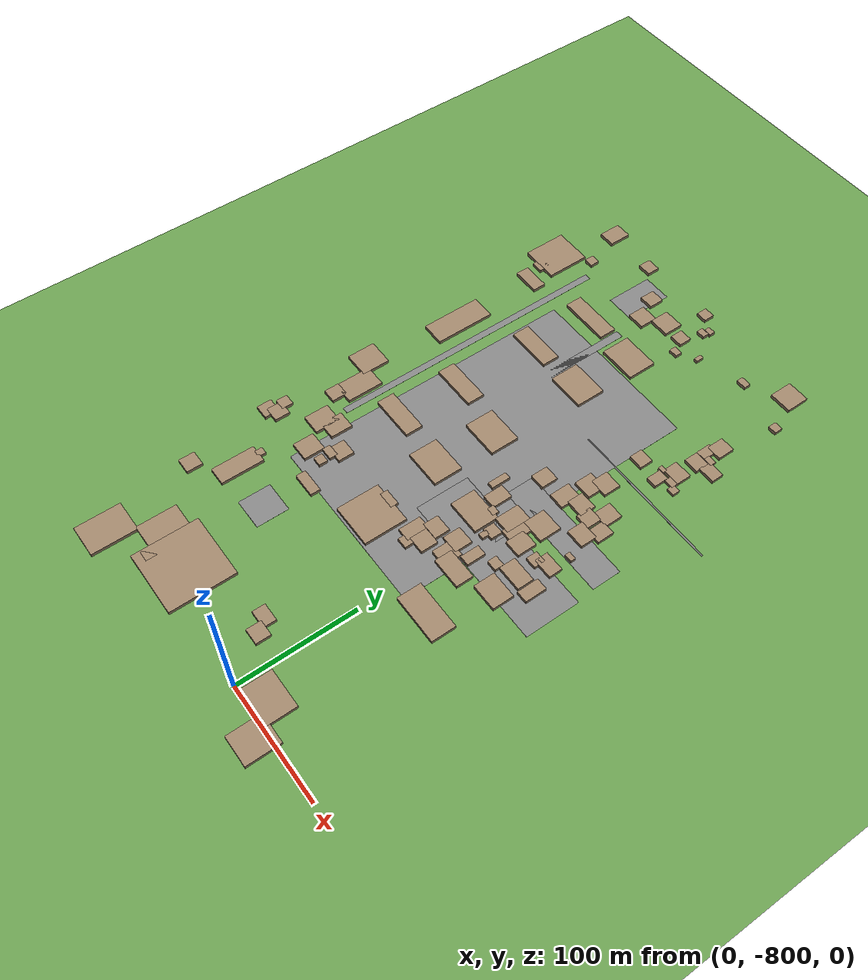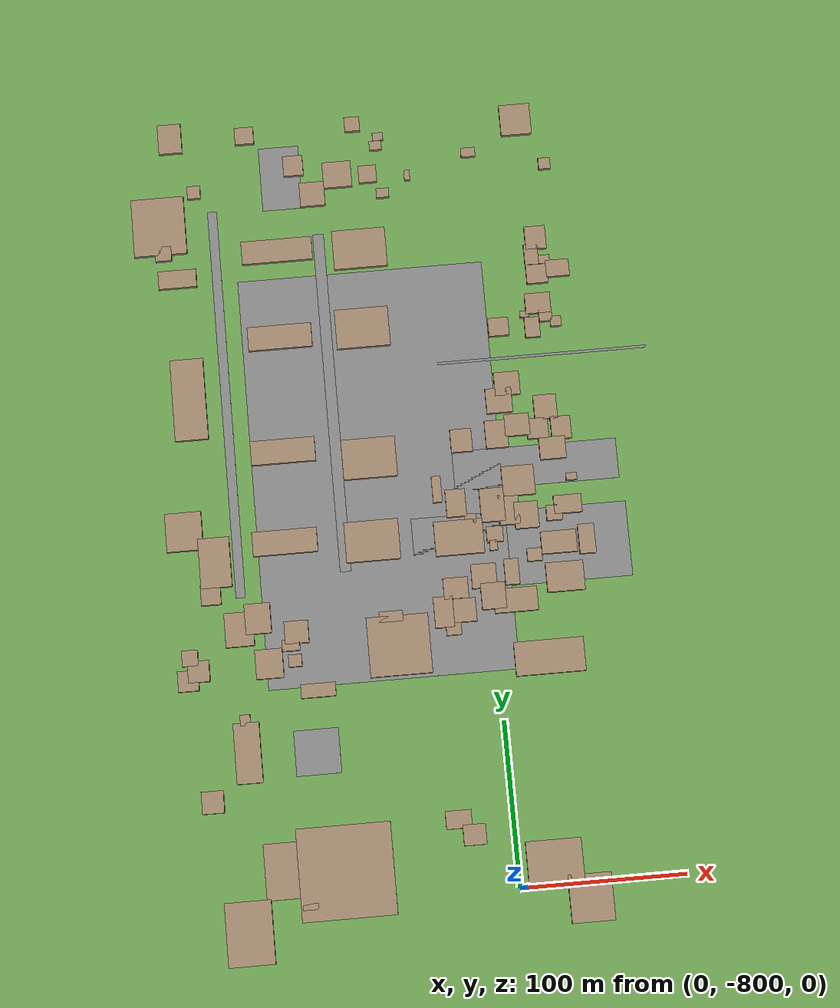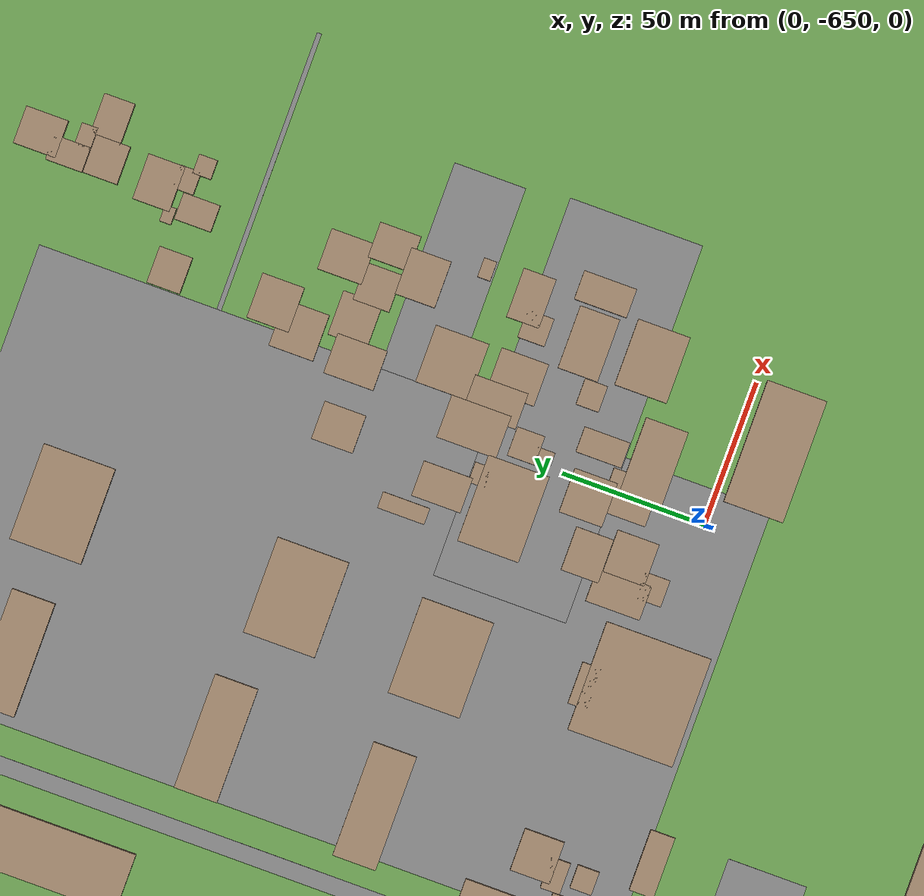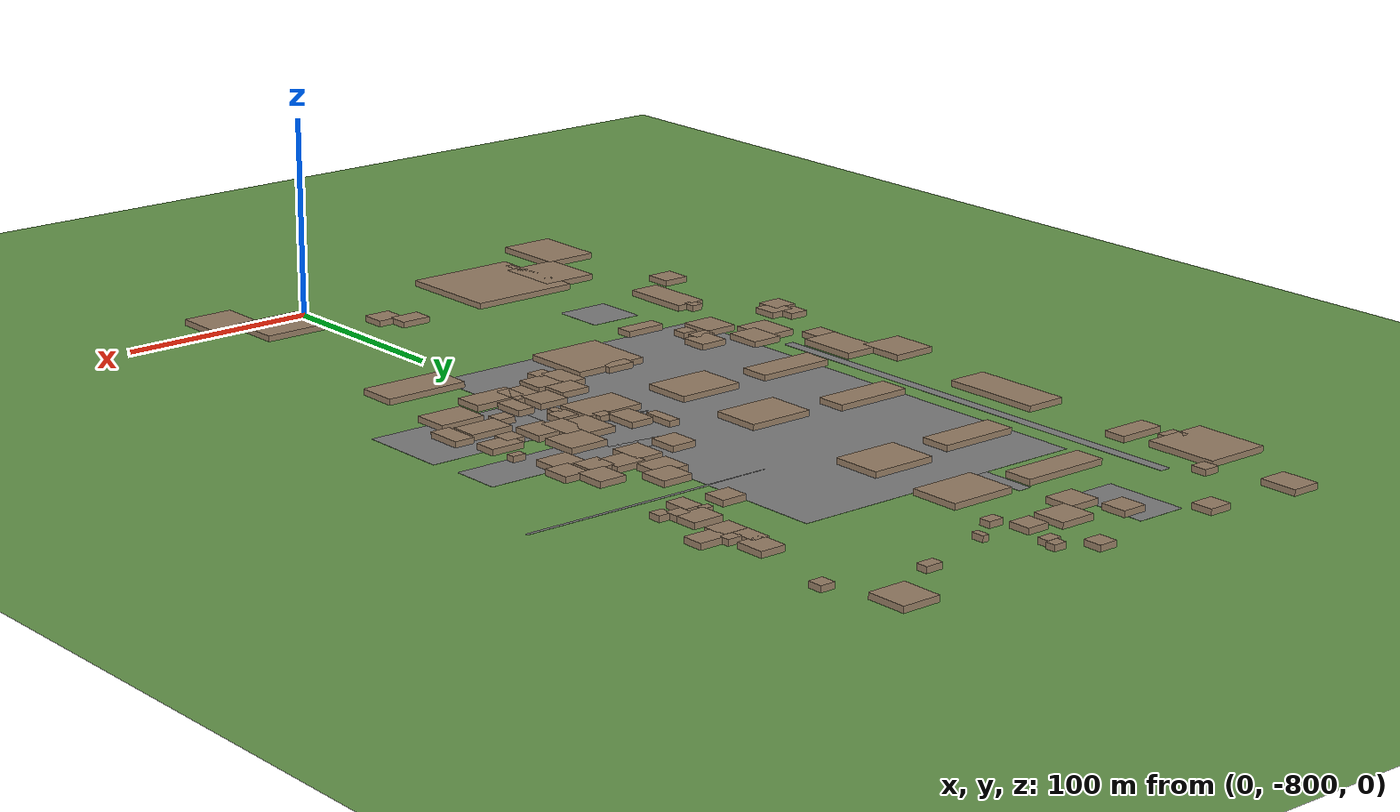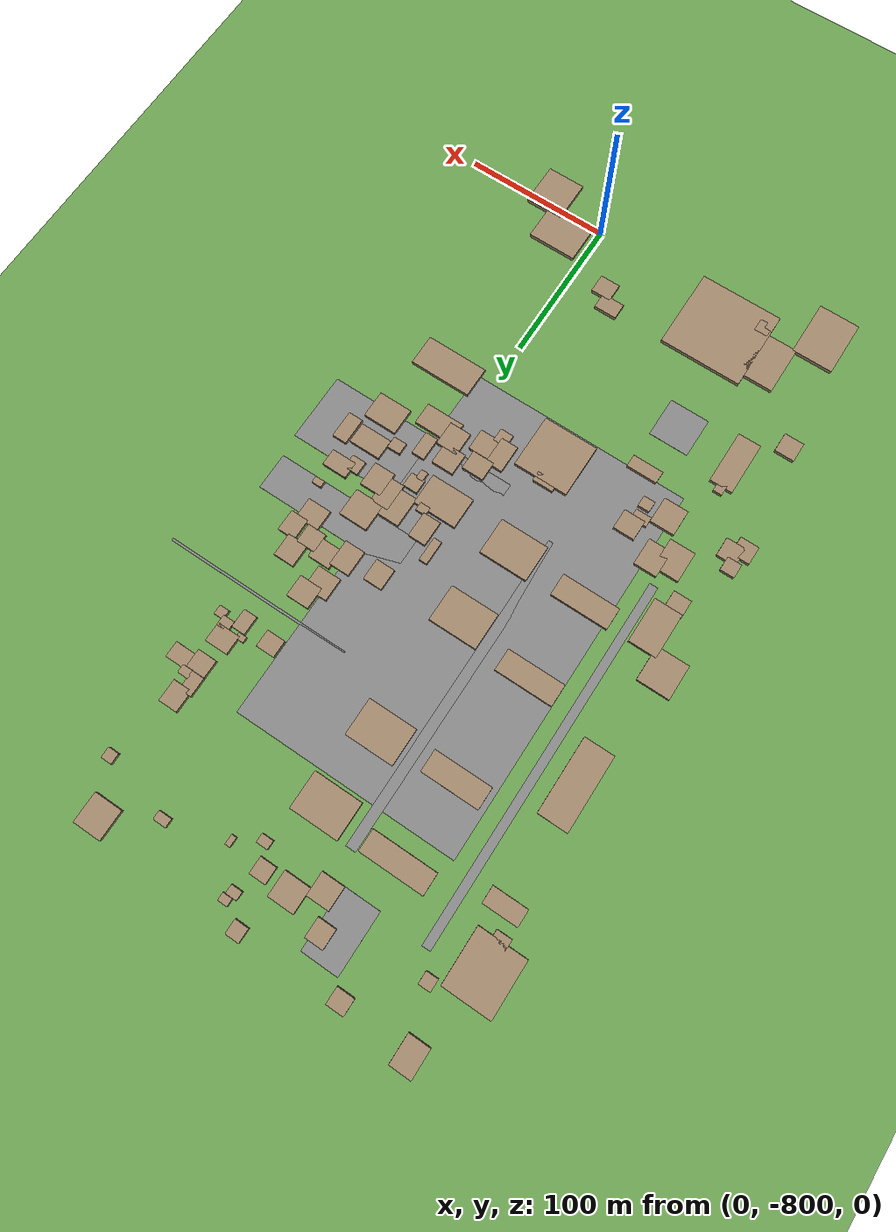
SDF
<sdf version="1.9">
 <world name="kimje_farmland">
  <model name="ground_plane">
   <static>true</static>
   <link name="link">
    <collision name="collision">
     <geometry><plane><normal>0 0 1</normal><size>2000 2000</size></plane></geometry>
    </collision>
    <visual name="visual">
     <geometry><plane><normal>0 0 1</normal><size>2000 2000</size></plane></geometry>
     <material><ambient>0.4 0.6 0.3 1</ambient><diffuse>0.4 0.6 0.3 1</diffuse></material>
    </visual>
   </link>
  </model>
  <model name="osm_49">
   <static>true</static>
   <pose>20.24 -594.63 0.040 0 0 0</pose>
   <link name="link">
    <collision name="collision"><geometry><box><size>132.35 46.45 0.080</size></box></geometry></collision>
    <visual name="visual">
     <geometry><box><size>132.35 46.45 0.080</size></box></geometry>
     <material><ambient>0.5 0.5 0.5 1</ambient><diffuse>0.5 0.5 0.5 1</diffuse></material>
    </visual>
   </link>
  </model>
  <model name="osm_106">
   <static>true</static>
   <pose>-153.56 -488.07 0.040 0 0 0</pose>
   <link name="link">
    <collision name="collision"><geometry><box><size>5.78 245.81 0.080</size></box></geometry></collision>
    <visual name="visual">
     <geometry><box><size>5.78 245.81 0.080</size></box></geometry>
     <material><ambient>0.5 0.5 0.5 1</ambient><diffuse>0.5 0.5 0.5 1</diffuse></material>
    </visual>
   </link>
  </model>
  <model name="osm_107">
   <static>true</static>
   <pose>-64.33 -540.54 0.040 0 0 0</pose>
   <link name="link">
    <collision name="collision"><geometry><box><size>152.93 256.90 0.080</size></box></geometry></collision>
    <visual name="visual">
     <geometry><box><size>152.93 256.90 0.080</size></box></geometry>
     <material><ambient>0.5 0.5 0.5 1</ambient><diffuse>0.5 0.5 0.5 1</diffuse></material>
    </visual>
   </link>
  </model>
  <model name="osm_121">
   <static>true</static>
   <pose>-108.99 -346.88 0.040 0 0 0</pose>
   <link name="link">
    <collision name="collision"><geometry><box><size>25.13 40.97 0.080</size></box></geometry></collision>
    <visual name="visual">
     <geometry><box><size>25.13 40.97 0.080</size></box></geometry>
     <material><ambient>0.5 0.5 0.5 1</ambient><diffuse>0.5 0.5 0.5 1</diffuse></material>
    </visual>
   </link>
  </model>
  <model name="osm_169">
   <static>true</static>
   <pose>-114.23 -708.53 0.040 0 0 0</pose>
   <link name="link">
    <collision name="collision"><geometry><box><size>27.28 27.43 0.080</size></box></geometry></collision>
    <visual name="visual">
     <geometry><box><size>27.28 27.43 0.080</size></box></geometry>
     <material><ambient>0.5 0.5 0.5 1</ambient><diffuse>0.5 0.5 0.5 1</diffuse></material>
    </visual>
   </link>
  </model>
  <model name="osm_170">
   <static>true</static>
   <pose>44.25 -475.12 0.040 0 0 0</pose>
   <link name="link">
    <collision name="collision"><geometry><box><size>129.79 1.60 0.080</size></box></geometry></collision>
    <visual name="visual">
     <geometry><box><size>129.79 1.60 0.080</size></box></geometry>
     <material><ambient>0.5 0.5 0.5 1</ambient><diffuse>0.5 0.5 0.5 1</diffuse></material>
    </visual>
   </link>
  </model>
  <model name="osm_174">
   <static>true</static>
   <pose>-155.92 -705.83 1.500 0 0 0</pose>
   <link name="link">
    <collision name="collision"><geometry><box><size>15.80 36.69 3.000</size></box></geometry></collision>
    <visual name="visual">
     <geometry><box><size>15.80 36.69 3.000</size></box></geometry>
     <material><ambient>0.6 0.5 0.4 1</ambient><diffuse>0.6 0.5 0.4 1</diffuse></material>
    </visual>
   </link>
  </model>
  <model name="osm_175">
   <static>true</static>
   <pose>-182.11 -654.13 1.500 0 0 0</pose>
   <link name="link">
    <collision name="collision"><geometry><box><size>13.18 13.00 3.000</size></box></geometry></collision>
    <visual name="visual">
     <geometry><box><size>13.18 13.00 3.000</size></box></geometry>
     <material><ambient>0.6 0.5 0.4 1</ambient><diffuse>0.6 0.5 0.4 1</diffuse></material>
    </visual>
   </link>
  </model>
  <model name="osm_176">
   <static>true</static>
   <pose>-188.78 -659.40 1.500 0 0 0</pose>
   <link name="link">
    <collision name="collision"><geometry><box><size>12.63 12.60 3.000</size></box></geometry></collision>
    <visual name="visual">
     <geometry><box><size>12.63 12.60 3.000</size></box></geometry>
     <material><ambient>0.6 0.5 0.4 1</ambient><diffuse>0.6 0.5 0.4 1</diffuse></material>
    </visual>
   </link>
  </model>
  <model name="osm_177">
   <static>true</static>
   <pose>-186.82 -645.58 1.500 0 0 0</pose>
   <link name="link">
    <collision name="collision"><geometry><box><size>9.77 9.73 3.000</size></box></geometry></collision>
    <visual name="visual">
     <geometry><box><size>9.77 9.73 3.000</size></box></geometry>
     <material><ambient>0.6 0.5 0.4 1</ambient><diffuse>0.6 0.5 0.4 1</diffuse></material>
    </visual>
   </link>
  </model>
  <model name="osm_191">
   <static>true</static>
   <pose>-179.10 -733.44 1.500 0 0 0</pose>
   <link name="link">
    <collision name="collision"><geometry><box><size>13.40 13.48 3.000</size></box></geometry></collision>
    <visual name="visual">
     <geometry><box><size>13.40 13.48 3.000</size></box></geometry>
     <material><ambient>0.6 0.5 0.4 1</ambient><diffuse>0.6 0.5 0.4 1</diffuse></material>
    </visual>
   </link>
  </model>
  <model name="osm_197">
   <static>true</static>
   <pose>-156.17 -685.99 1.500 0 0 0</pose>
   <link name="link">
    <collision name="collision"><geometry><box><size>6.15 6.66 3.000</size></box></geometry></collision>
    <visual name="visual">
     <geometry><box><size>6.15 6.66 3.000</size></box></geometry>
     <material><ambient>0.6 0.5 0.4 1</ambient><diffuse>0.6 0.5 0.4 1</diffuse></material>
    </visual>
   </link>
  </model>
  <model name="osm_759">
   <static>true</static>
   <pose>-176.65 -315.94 1.500 0 0 0</pose>
   <link name="link">
    <collision name="collision"><geometry><box><size>14.64 19.01 3.000</size></box></geometry></collision>
    <visual name="visual">
     <geometry><box><size>14.64 19.01 3.000</size></box></geometry>
     <material><ambient>0.6 0.5 0.4 1</ambient><diffuse>0.6 0.5 0.4 1</diffuse></material>
    </visual>
   </link>
  </model>
  <model name="osm_774">
   <static>true</static>
   <pose>-129.71 -317.85 1.500 0 0 0</pose>
   <link name="link">
    <collision name="collision"><geometry><box><size>11.85 10.90 3.000</size></box></geometry></collision>
    <visual name="visual">
     <geometry><box><size>11.85 10.90 3.000</size></box></geometry>
     <material><ambient>0.6 0.5 0.4 1</ambient><diffuse>0.6 0.5 0.4 1</diffuse></material>
    </visual>
   </link>
  </model>
  <model name="osm_779">
   <static>true</static>
   <pose>-61.20 -316.01 1.500 0 0 0</pose>
   <link name="link">
    <collision name="collision"><geometry><box><size>9.48 9.37 3.000</size></box></geometry></collision>
    <visual name="visual">
     <geometry><box><size>9.48 9.37 3.000</size></box></geometry>
     <material><ambient>0.6 0.5 0.4 1</ambient><diffuse>0.6 0.5 0.4 1</diffuse></material>
    </visual>
   </link>
  </model>
  <model name="osm_783">
   <static>true</static>
   <pose>-45.70 -325.67 1.500 0 0 0</pose>
   <link name="link">
    <collision name="collision"><geometry><box><size>6.55 5.07 3.000</size></box></geometry></collision>
    <visual name="visual">
     <geometry><box><size>6.55 5.07 3.000</size></box></geometry>
     <material><ambient>0.6 0.5 0.4 1</ambient><diffuse>0.6 0.5 0.4 1</diffuse></material>
    </visual>
   </link>
  </model>
  <model name="osm_784">
   <static>true</static>
   <pose>-47.65 -331.33 1.500 0 0 0</pose>
   <link name="link">
    <collision name="collision"><geometry><box><size>7.57 5.76 3.000</size></box></geometry></collision>
    <visual name="visual">
     <geometry><box><size>7.57 5.76 3.000</size></box></geometry>
     <material><ambient>0.6 0.5 0.4 1</ambient><diffuse>0.6 0.5 0.4 1</diffuse></material>
    </visual>
   </link>
  </model>
  <model name="osm_805">
   <static>true</static>
   <pose>41.92 -321.94 1.500 0 0 0</pose>
   <link name="link">
    <collision name="collision"><geometry><box><size>19.26 19.97 3.000</size></box></geometry></collision>
    <visual name="visual">
     <geometry><box><size>19.26 19.97 3.000</size></box></geometry>
     <material><ambient>0.6 0.5 0.4 1</ambient><diffuse>0.6 0.5 0.4 1</diffuse></material>
    </visual>
   </link>
  </model>
  <model name="osm_807">
   <static>true</static>
   <pose>57.48 -352.31 1.500 0 0 0</pose>
   <link name="link">
    <collision name="collision"><geometry><box><size>7.35 7.18 3.000</size></box></geometry></collision>
    <visual name="visual">
     <geometry><box><size>7.35 7.18 3.000</size></box></geometry>
     <material><ambient>0.6 0.5 0.4 1</ambient><diffuse>0.6 0.5 0.4 1</diffuse></material>
    </visual>
   </link>
  </model>
  <model name="osm_808">
   <static>true</static>
   <pose>10.24 -340.84 1.500 0 0 0</pose>
   <link name="link">
    <collision name="collision"><geometry><box><size>8.88 5.88 3.000</size></box></geometry></collision>
    <visual name="visual">
     <geometry><box><size>8.88 5.88 3.000</size></box></geometry>
     <material><ambient>0.6 0.5 0.4 1</ambient><diffuse>0.6 0.5 0.4 1</diffuse></material>
    </visual>
   </link>
  </model>
  <model name="osm_809">
   <static>true</static>
   <pose>-29.42 -352.53 1.500 0 0 0</pose>
   <link name="link">
    <collision name="collision"><geometry><box><size>3.46 6.45 3.000</size></box></geometry></collision>
    <visual name="visual">
     <geometry><box><size>3.46 6.45 3.000</size></box></geometry>
     <material><ambient>0.6 0.5 0.4 1</ambient><diffuse>0.6 0.5 0.4 1</diffuse></material>
    </visual>
   </link>
  </model>
  <model name="osm_810">
   <static>true</static>
   <pose>-45.71 -362.72 1.500 0 0 0</pose>
   <link name="link">
    <collision name="collision"><geometry><box><size>7.85 5.93 3.000</size></box></geometry></collision>
    <visual name="visual">
     <geometry><box><size>7.85 5.93 3.000</size></box></geometry>
     <material><ambient>0.6 0.5 0.4 1</ambient><diffuse>0.6 0.5 0.4 1</diffuse></material>
    </visual>
   </link>
  </model>
  <model name="osm_811">
   <static>true</static>
   <pose>-54.15 -349.53 1.500 0 0 0</pose>
   <link name="link">
    <collision name="collision"><geometry><box><size>11.23 11.03 3.000</size></box></geometry></collision>
    <visual name="visual">
     <geometry><box><size>11.23 11.03 3.000</size></box></geometry>
     <material><ambient>0.6 0.5 0.4 1</ambient><diffuse>0.6 0.5 0.4 1</diffuse></material>
    </visual>
   </link>
  </model>
  <model name="osm_812">
   <static>true</static>
   <pose>-73.25 -348.25 1.500 0 0 0</pose>
   <link name="link">
    <collision name="collision"><geometry><box><size>17.90 16.72 3.000</size></box></geometry></collision>
    <visual name="visual">
     <geometry><box><size>17.90 16.72 3.000</size></box></geometry>
     <material><ambient>0.6 0.5 0.4 1</ambient><diffuse>0.6 0.5 0.4 1</diffuse></material>
    </visual>
   </link>
  </model>
  <model name="osm_813">
   <static>true</static>
   <pose>-100.47 -340.19 1.500 0 0 0</pose>
   <link name="link">
    <collision name="collision"><geometry><box><size>12.41 13.00 3.000</size></box></geometry></collision>
    <visual name="visual">
     <geometry><box><size>12.41 13.00 3.000</size></box></geometry>
     <material><ambient>0.6 0.5 0.4 1</ambient><diffuse>0.6 0.5 0.4 1</diffuse></material>
    </visual>
   </link>
  </model>
  <model name="osm_814">
   <static>true</static>
   <pose>-89.86 -359.68 1.500 0 0 0</pose>
   <link name="link">
    <collision name="collision"><geometry><box><size>15.51 15.48 3.000</size></box></geometry></collision>
    <visual name="visual">
     <geometry><box><size>15.51 15.48 3.000</size></box></geometry>
     <material><ambient>0.6 0.5 0.4 1</ambient><diffuse>0.6 0.5 0.4 1</diffuse></material>
    </visual>
   </link>
  </model>
  <model name="osm_815">
   <static>true</static>
   <pose>-163.98 -352.23 1.500 0 0 0</pose>
   <link name="link">
    <collision name="collision"><geometry><box><size>8.12 8.10 3.000</size></box></geometry></collision>
    <visual name="visual">
     <geometry><box><size>8.12 8.10 3.000</size></box></geometry>
     <material><ambient>0.6 0.5 0.4 1</ambient><diffuse>0.6 0.5 0.4 1</diffuse></material>
    </visual>
   </link>
  </model>
  <model name="osm_816">
   <static>true</static>
   <pose>-187.26 -372.69 1.500 0 0 0</pose>
   <link name="link">
    <collision name="collision"><geometry><box><size>32.94 37.06 3.000</size></box></geometry></collision>
    <visual name="visual">
     <geometry><box><size>32.94 37.06 3.000</size></box></geometry>
     <material><ambient>0.6 0.5 0.4 1</ambient><diffuse>0.6 0.5 0.4 1</diffuse></material>
    </visual>
   </link>
  </model>
  <model name="osm_837">
   <static>true</static>
   <pose>-178.03 -407.62 1.500 0 0 0</pose>
   <link name="link">
    <collision name="collision"><geometry><box><size>23.67 11.35 3.000</size></box></geometry></collision>
    <visual name="visual">
     <geometry><box><size>23.67 11.35 3.000</size></box></geometry>
     <material><ambient>0.6 0.5 0.4 1</ambient><diffuse>0.6 0.5 0.4 1</diffuse></material>
    </visual>
   </link>
  </model>
  <model name="osm_838">
   <static>true</static>
   <pose>-185.66 -390.52 1.500 0 0 0</pose>
   <link name="link">
    <collision name="collision"><geometry><box><size>10.07 9.31 3.000</size></box></geometry></collision>
    <visual name="visual">
     <geometry><box><size>10.07 9.31 3.000</size></box></geometry>
     <material><ambient>0.6 0.5 0.4 1</ambient><diffuse>0.6 0.5 0.4 1</diffuse></material>
    </visual>
   </link>
  </model>
  <model name="osm_839">
   <static>true</static>
   <pose>-114.83 -394.46 1.500 0 0 0</pose>
   <link name="link">
    <collision name="collision"><geometry><box><size>44.14 14.65 3.000</size></box></geometry></collision>
    <visual name="visual">
     <geometry><box><size>44.14 14.65 3.000</size></box></geometry>
     <material><ambient>0.6 0.5 0.4 1</ambient><diffuse>0.6 0.5 0.4 1</diffuse></material>
    </visual>
   </link>
  </model>
  <model name="osm_840">
   <static>true</static>
   <pose>-117.19 -450.11 1.500 0 0 0</pose>
   <link name="link">
    <collision name="collision"><geometry><box><size>39.71 15.05 3.000</size></box></geometry></collision>
    <visual name="visual">
     <geometry><box><size>39.71 15.05 3.000</size></box></geometry>
     <material><ambient>0.6 0.5 0.4 1</ambient><diffuse>0.6 0.5 0.4 1</diffuse></material>
    </visual>
   </link>
  </model>
  <model name="osm_841">
   <static>true</static>
   <pose>-63.10 -397.55 1.500 0 0 0</pose>
   <link name="link">
    <collision name="collision"><geometry><box><size>33.27 24.99 3.000</size></box></geometry></collision>
    <visual name="visual">
     <geometry><box><size>33.27 24.99 3.000</size></box></geometry>
     <material><ambient>0.6 0.5 0.4 1</ambient><diffuse>0.6 0.5 0.4 1</diffuse></material>
    </visual>
   </link>
  </model>
  <model name="osm_842">
   <static>true</static>
   <pose>-65.53 -448.65 1.500 0 0 0</pose>
   <link name="link">
    <collision name="collision"><geometry><box><size>33.27 24.99 3.000</size></box></geometry></collision>
    <visual name="visual">
     <geometry><box><size>33.27 24.99 3.000</size></box></geometry>
     <material><ambient>0.6 0.5 0.4 1</ambient><diffuse>0.6 0.5 0.4 1</diffuse></material>
    </visual>
   </link>
  </model>
  <model name="osm_843">
   <static>true</static>
   <pose>47.19 -400.11 1.500 0 0 0</pose>
   <link name="link">
    <collision name="collision"><geometry><box><size>12.92 14.67 3.000</size></box></geometry></collision>
    <visual name="visual">
     <geometry><box><size>12.92 14.67 3.000</size></box></geometry>
     <material><ambient>0.6 0.5 0.4 1</ambient><diffuse>0.6 0.5 0.4 1</diffuse></material>
    </visual>
   </link>
  </model>
  <model name="osm_844">
   <static>true</static>
   <pose>43.53 -410.97 1.500 0 0 0</pose>
   <link name="link">
    <collision name="collision"><geometry><box><size>8.60 12.79 3.000</size></box></geometry></collision>
    <visual name="visual">
     <geometry><box><size>8.60 12.79 3.000</size></box></geometry>
     <material><ambient>0.6 0.5 0.4 1</ambient><diffuse>0.6 0.5 0.4 1</diffuse></material>
    </visual>
   </link>
  </model>
  <model name="osm_845">
   <static>true</static>
   <pose>45.96 -423.59 1.500 0 0 0</pose>
   <link name="link">
    <collision name="collision"><geometry><box><size>13.18 11.99 3.000</size></box></geometry></collision>
    <visual name="visual">
     <geometry><box><size>13.18 11.99 3.000</size></box></geometry>
     <material><ambient>0.6 0.5 0.4 1</ambient><diffuse>0.6 0.5 0.4 1</diffuse></material>
    </visual>
   </link>
  </model>
  <model name="osm_846">
   <static>true</static>
   <pose>50.94 -414.66 1.500 0 0 0</pose>
   <link name="link">
    <collision name="collision"><geometry><box><size>7.53 5.53 3.000</size></box></geometry></collision>
    <visual name="visual">
     <geometry><box><size>7.53 5.53 3.000</size></box></geometry>
     <material><ambient>0.6 0.5 0.4 1</ambient><diffuse>0.6 0.5 0.4 1</diffuse></material>
    </visual>
   </link>
  </model>
  <model name="osm_847">
   <static>true</static>
   <pose>59.06 -420.87 1.500 0 0 0</pose>
   <link name="link">
    <collision name="collision"><geometry><box><size>14.53 10.65 3.000</size></box></geometry></collision>
    <visual name="visual">
     <geometry><box><size>14.53 10.65 3.000</size></box></geometry>
     <material><ambient>0.6 0.5 0.4 1</ambient><diffuse>0.6 0.5 0.4 1</diffuse></material>
    </visual>
   </link>
  </model>
  <model name="osm_864">
   <static>true</static>
   <pose>44.71 -442.40 1.500 0 0 0</pose>
   <link name="link">
    <collision name="collision"><geometry><box><size>15.73 12.88 3.000</size></box></geometry></collision>
    <visual name="visual">
     <geometry><box><size>15.73 12.88 3.000</size></box></geometry>
     <material><ambient>0.6 0.5 0.4 1</ambient><diffuse>0.6 0.5 0.4 1</diffuse></material>
    </visual>
   </link>
  </model>
  <model name="osm_865">
   <static>true</static>
   <pose>54.80 -454.89 1.500 0 0 0</pose>
   <link name="link">
    <collision name="collision"><geometry><box><size>6.66 6.40 3.000</size></box></geometry></collision>
    <visual name="visual">
     <geometry><box><size>6.66 6.40 3.000</size></box></geometry>
     <material><ambient>0.6 0.5 0.4 1</ambient><diffuse>0.6 0.5 0.4 1</diffuse></material>
    </visual>
   </link>
  </model>
  <model name="osm_866">
   <static>true</static>
   <pose>39.83 -457.55 1.500 0 0 0</pose>
   <link name="link">
    <collision name="collision"><geometry><box><size>9.25 12.80 3.000</size></box></geometry></collision>
    <visual name="visual">
     <geometry><box><size>9.25 12.80 3.000</size></box></geometry>
     <material><ambient>0.6 0.5 0.4 1</ambient><diffuse>0.6 0.5 0.4 1</diffuse></material>
    </visual>
   </link>
  </model>
  <model name="osm_867">
   <static>true</static>
   <pose>35.80 -448.79 1.500 0 0 0</pose>
   <link name="link">
    <collision name="collision"><geometry><box><size>5.69 3.97 3.000</size></box></geometry></collision>
    <visual name="visual">
     <geometry><box><size>5.69 3.97 3.000</size></box></geometry>
     <material><ambient>0.6 0.5 0.4 1</ambient><diffuse>0.6 0.5 0.4 1</diffuse></material>
    </visual>
   </link>
  </model>
  <model name="osm_868">
   <static>true</static>
   <pose>48.69 -450.76 1.500 0 0 0</pose>
   <link name="link">
    <collision name="collision"><geometry><box><size>8.01 7.21 3.000</size></box></geometry></collision>
    <visual name="visual">
     <geometry><box><size>8.01 7.21 3.000</size></box></geometry>
     <material><ambient>0.6 0.5 0.4 1</ambient><diffuse>0.6 0.5 0.4 1</diffuse></material>
    </visual>
   </link>
  </model>
  <model name="osm_869">
   <static>true</static>
   <pose>18.86 -455.53 1.500 0 0 0</pose>
   <link name="link">
    <collision name="collision"><geometry><box><size>12.69 11.52 3.000</size></box></geometry></collision>
    <visual name="visual">
     <geometry><box><size>12.69 11.52 3.000</size></box></geometry>
     <material><ambient>0.6 0.5 0.4 1</ambient><diffuse>0.6 0.5 0.4 1</diffuse></material>
    </visual>
   </link>
  </model>
  <model name="osm_876">
   <static>true</static>
   <pose>-176.14 -485.18 1.500 0 0 0</pose>
   <link name="link">
    <collision name="collision"><geometry><box><size>20.59 51.34 3.000</size></box></geometry></collision>
    <visual name="visual">
     <geometry><box><size>20.59 51.34 3.000</size></box></geometry>
     <material><ambient>0.6 0.5 0.4 1</ambient><diffuse>0.6 0.5 0.4 1</diffuse></material>
    </visual>
   </link>
  </model>
  <model name="osm_877">
   <static>true</static>
   <pose>-120.82 -522.52 1.500 0 0 0</pose>
   <link name="link">
    <collision name="collision"><geometry><box><size>39.71 15.05 3.000</size></box></geometry></collision>
    <visual name="visual">
     <geometry><box><size>39.71 15.05 3.000</size></box></geometry>
     <material><ambient>0.6 0.5 0.4 1</ambient><diffuse>0.6 0.5 0.4 1</diffuse></material>
    </visual>
   </link>
  </model>
  <model name="osm_878">
   <static>true</static>
   <pose>-68.19 -531.47 1.500 0 0 0</pose>
   <link name="link">
    <collision name="collision"><geometry><box><size>33.27 24.99 3.000</size></box></geometry></collision>
    <visual name="visual">
     <geometry><box><size>33.27 24.99 3.000</size></box></geometry>
     <material><ambient>0.6 0.5 0.4 1</ambient><diffuse>0.6 0.5 0.4 1</diffuse></material>
    </visual>
   </link>
  </model>
  <model name="osm_879">
   <static>true</static>
   <pose>20.72 -491.95 1.500 0 0 0</pose>
   <link name="link">
    <collision name="collision"><geometry><box><size>15.57 14.66 3.000</size></box></geometry></collision>
    <visual name="visual">
     <geometry><box><size>15.57 14.66 3.000</size></box></geometry>
     <material><ambient>0.6 0.5 0.4 1</ambient><diffuse>0.6 0.5 0.4 1</diffuse></material>
    </visual>
   </link>
  </model>
  <model name="osm_880">
   <static>true</static>
   <pose>14.80 -502.33 1.500 0 0 0</pose>
   <link name="link">
    <collision name="collision"><geometry><box><size>16.09 15.50 3.000</size></box></geometry></collision>
    <visual name="visual">
     <geometry><box><size>16.09 15.50 3.000</size></box></geometry>
     <material><ambient>0.6 0.5 0.4 1</ambient><diffuse>0.6 0.5 0.4 1</diffuse></material>
    </visual>
   </link>
  </model>
  <model name="osm_881">
   <static>true</static>
   <pose>11.33 -523.34 1.500 0 0 0</pose>
   <link name="link">
    <collision name="collision"><geometry><box><size>13.83 17.39 3.000</size></box></geometry></collision>
    <visual name="visual">
     <geometry><box><size>13.83 17.39 3.000</size></box></geometry>
     <material><ambient>0.6 0.5 0.4 1</ambient><diffuse>0.6 0.5 0.4 1</diffuse></material>
    </visual>
   </link>
  </model>
  <model name="osm_882">
   <static>true</static>
   <pose>-10.75 -525.48 1.500 0 0 0</pose>
   <link name="link">
    <collision name="collision"><geometry><box><size>13.15 14.43 3.000</size></box></geometry></collision>
    <visual name="visual">
     <geometry><box><size>13.15 14.43 3.000</size></box></geometry>
     <material><ambient>0.6 0.5 0.4 1</ambient><diffuse>0.6 0.5 0.4 1</diffuse></material>
    </visual>
   </link>
  </model>
  <model name="osm_889">
   <static>true</static>
   <pose>44.98 -534.85 1.500 0 0 0</pose>
   <link name="link">
    <collision name="collision"><geometry><box><size>16.16 13.90 3.000</size></box></geometry></collision>
    <visual name="visual">
     <geometry><box><size>16.16 13.90 3.000</size></box></geometry>
     <material><ambient>0.6 0.5 0.4 1</ambient><diffuse>0.6 0.5 0.4 1</diffuse></material>
    </visual>
   </link>
  </model>
  <model name="osm_890">
   <static>true</static>
   <pose>51.35 -522.52 1.500 0 0 0</pose>
   <link name="link">
    <collision name="collision"><geometry><box><size>12.24 14.28 3.000</size></box></geometry></collision>
    <visual name="visual">
     <geometry><box><size>12.24 14.28 3.000</size></box></geometry>
     <material><ambient>0.6 0.5 0.4 1</ambient><diffuse>0.6 0.5 0.4 1</diffuse></material>
    </visual>
   </link>
  </model>
  <model name="osm_891">
   <static>true</static>
   <pose>42.96 -508.77 1.500 0 0 0</pose>
   <link name="link">
    <collision name="collision"><geometry><box><size>14.10 15.41 3.000</size></box></geometry></collision>
    <visual name="visual">
     <geometry><box><size>14.10 15.41 3.000</size></box></geometry>
     <material><ambient>0.6 0.5 0.4 1</ambient><diffuse>0.6 0.5 0.4 1</diffuse></material>
    </visual>
   </link>
  </model>
  <model name="osm_892">
   <static>true</static>
   <pose>36.95 -521.82 1.500 0 0 0</pose>
   <link name="link">
    <collision name="collision"><geometry><box><size>13.02 12.66 3.000</size></box></geometry></collision>
    <visual name="visual">
     <geometry><box><size>13.02 12.66 3.000</size></box></geometry>
     <material><ambient>0.6 0.5 0.4 1</ambient><diffuse>0.6 0.5 0.4 1</diffuse></material>
    </visual>
   </link>
  </model>
  <model name="osm_893">
   <static>true</static>
   <pose>24.48 -518.50 1.500 0 0 0</pose>
   <link name="link">
    <collision name="collision"><geometry><box><size>15.30 13.74 3.000</size></box></geometry></collision>
    <visual name="visual">
     <geometry><box><size>15.30 13.74 3.000</size></box></geometry>
     <material><ambient>0.6 0.5 0.4 1</ambient><diffuse>0.6 0.5 0.4 1</diffuse></material>
    </visual>
   </link>
  </model>
  <model name="osm_896">
   <static>true</static>
   <pose>-185.06 -567.67 1.500 0 0 0</pose>
   <link name="link">
    <collision name="collision"><geometry><box><size>22.36 23.87 3.000</size></box></geometry></collision>
    <visual name="visual">
     <geometry><box><size>22.36 23.87 3.000</size></box></geometry>
     <material><ambient>0.6 0.5 0.4 1</ambient><diffuse>0.6 0.5 0.4 1</diffuse></material>
    </visual>
   </link>
  </model>
  <model name="osm_897">
   <static>true</static>
   <pose>-167.54 -588.42 1.500 0 0 0</pose>
   <link name="link">
    <collision name="collision"><geometry><box><size>19.13 31.00 3.000</size></box></geometry></collision>
    <visual name="visual">
     <geometry><box><size>19.13 31.00 3.000</size></box></geometry>
     <material><ambient>0.6 0.5 0.4 1</ambient><diffuse>0.6 0.5 0.4 1</diffuse></material>
    </visual>
   </link>
  </model>
  <model name="osm_898">
   <static>true</static>
   <pose>-171.43 -607.88 1.500 0 0 0</pose>
   <link name="link">
    <collision name="collision"><geometry><box><size>12.17 12.78 3.000</size></box></geometry></collision>
    <visual name="visual">
     <geometry><box><size>12.17 12.78 3.000</size></box></geometry>
     <material><ambient>0.6 0.5 0.4 1</ambient><diffuse>0.6 0.5 0.4 1</diffuse></material>
    </visual>
   </link>
  </model>
  <model name="osm_900">
   <static>true</static>
   <pose>-123.97 -579.20 1.500 0 0 0</pose>
   <link name="link">
    <collision name="collision"><geometry><box><size>39.71 15.05 3.000</size></box></geometry></collision>
    <visual name="visual">
     <geometry><box><size>39.71 15.05 3.000</size></box></geometry>
     <material><ambient>0.6 0.5 0.4 1</ambient><diffuse>0.6 0.5 0.4 1</diffuse></material>
    </visual>
   </link>
  </model>
  <model name="osm_901">
   <static>true</static>
   <pose>-70.61 -583.06 1.500 0 0 0</pose>
   <link name="link">
    <collision name="collision"><geometry><box><size>33.27 24.99 3.000</size></box></geometry></collision>
    <visual name="visual">
     <geometry><box><size>33.27 24.99 3.000</size></box></geometry>
     <material><ambient>0.6 0.5 0.4 1</ambient><diffuse>0.6 0.5 0.4 1</diffuse></material>
    </visual>
   </link>
  </model>
  <model name="osm_902">
   <static>true</static>
   <pose>-28.47 -554.68 1.500 0 0 0</pose>
   <link name="link">
    <collision name="collision"><geometry><box><size>5.63 16.39 3.000</size></box></geometry></collision>
    <visual name="visual">
     <geometry><box><size>5.63 16.39 3.000</size></box></geometry>
     <material><ambient>0.6 0.5 0.4 1</ambient><diffuse>0.6 0.5 0.4 1</diffuse></material>
    </visual>
   </link>
  </model>
  <model name="osm_903">
   <static>true</static>
   <pose>-17.58 -564.21 1.500 0 0 0</pose>
   <link name="link">
    <collision name="collision"><geometry><box><size>12.17 17.11 3.000</size></box></geometry></collision>
    <visual name="visual">
     <geometry><box><size>12.17 17.11 3.000</size></box></geometry>
     <material><ambient>0.6 0.5 0.4 1</ambient><diffuse>0.6 0.5 0.4 1</diffuse></material>
    </visual>
   </link>
  </model>
  <model name="osm_904">
   <static>true</static>
   <pose>-17.47 -585.64 1.500 0 0 0</pose>
   <link name="link">
    <collision name="collision"><geometry><box><size>30.00 21.35 3.000</size></box></geometry></collision>
    <visual name="visual">
     <geometry><box><size>30.00 21.35 3.000</size></box></geometry>
     <material><ambient>0.6 0.5 0.4 1</ambient><diffuse>0.6 0.5 0.4 1</diffuse></material>
    </visual>
   </link>
  </model>
  <model name="osm_905">
   <static>true</static>
   <pose>-9.61 -574.54 1.500 0 0 0</pose>
   <link name="link">
    <collision name="collision"><geometry><box><size>7.08 5.66 3.000</size></box></geometry></collision>
    <visual name="visual">
     <geometry><box><size>7.08 5.66 3.000</size></box></geometry>
     <material><ambient>0.6 0.5 0.4 1</ambient><diffuse>0.6 0.5 0.4 1</diffuse></material>
    </visual>
   </link>
  </model>
  <model name="osm_906">
   <static>true</static>
   <pose>4.62 -567.27 1.500 0 0 0</pose>
   <link name="link">
    <collision name="collision"><geometry><box><size>14.79 20.84 3.000</size></box></geometry></collision>
    <visual name="visual">
     <geometry><box><size>14.79 20.84 3.000</size></box></geometry>
     <material><ambient>0.6 0.5 0.4 1</ambient><diffuse>0.6 0.5 0.4 1</diffuse></material>
    </visual>
   </link>
  </model>
  <model name="osm_907">
   <static>true</static>
   <pose>4.52 -585.58 1.500 0 0 0</pose>
   <link name="link">
    <collision name="collision"><geometry><box><size>10.04 9.64 3.000</size></box></geometry></collision>
    <visual name="visual">
     <geometry><box><size>10.04 9.64 3.000</size></box></geometry>
     <material><ambient>0.6 0.5 0.4 1</ambient><diffuse>0.6 0.5 0.4 1</diffuse></material>
    </visual>
   </link>
  </model>
  <model name="osm_908">
   <static>true</static>
   <pose>3.17 -592.33 1.500 0 0 0</pose>
   <link name="link">
    <collision name="collision"><geometry><box><size>4.80 6.22 3.000</size></box></geometry></collision>
    <visual name="visual">
     <geometry><box><size>4.80 6.22 3.000</size></box></geometry>
     <material><ambient>0.6 0.5 0.4 1</ambient><diffuse>0.6 0.5 0.4 1</diffuse></material>
    </visual>
   </link>
  </model>
  <model name="osm_909">
   <static>true</static>
   <pose>14.68 -571.13 1.500 0 0 0</pose>
   <link name="link">
    <collision name="collision"><geometry><box><size>12.46 18.53 3.000</size></box></geometry></collision>
    <visual name="visual">
     <geometry><box><size>12.46 18.53 3.000</size></box></geometry>
     <material><ambient>0.6 0.5 0.4 1</ambient><diffuse>0.6 0.5 0.4 1</diffuse></material>
    </visual>
   </link>
  </model>
  <model name="osm_910">
   <static>true</static>
   <pose>24.93 -575.27 1.500 0 0 0</pose>
   <link name="link">
    <collision name="collision"><geometry><box><size>14.64 16.49 3.000</size></box></geometry></collision>
    <visual name="visual">
     <geometry><box><size>14.64 16.49 3.000</size></box></geometry>
     <material><ambient>0.6 0.5 0.4 1</ambient><diffuse>0.6 0.5 0.4 1</diffuse></material>
    </visual>
   </link>
  </model>
  <model name="osm_911">
   <static>true</static>
   <pose>21.92 -553.44 1.500 0 0 0</pose>
   <link name="link">
    <collision name="collision"><geometry><box><size>19.84 18.63 3.000</size></box></geometry></collision>
    <visual name="visual">
     <geometry><box><size>19.84 18.63 3.000</size></box></geometry>
     <material><ambient>0.6 0.5 0.4 1</ambient><diffuse>0.6 0.5 0.4 1</diffuse></material>
    </visual>
   </link>
  </model>
  <model name="osm_912">
   <static>true</static>
   <pose>42.09 -575.35 1.500 0 0 0</pose>
   <link name="link">
    <collision name="collision"><geometry><box><size>9.66 9.41 3.000</size></box></geometry></collision>
    <visual name="visual">
     <geometry><box><size>9.66 9.41 3.000</size></box></geometry>
     <material><ambient>0.6 0.5 0.4 1</ambient><diffuse>0.6 0.5 0.4 1</diffuse></material>
    </visual>
   </link>
  </model>
  <model name="osm_913">
   <static>true</static>
   <pose>50.83 -570.61 1.500 0 0 0</pose>
   <link name="link">
    <collision name="collision"><geometry><box><size>17.04 11.35 3.000</size></box></geometry></collision>
    <visual name="visual">
     <geometry><box><size>17.04 11.35 3.000</size></box></geometry>
     <material><ambient>0.6 0.5 0.4 1</ambient><diffuse>0.6 0.5 0.4 1</diffuse></material>
    </visual>
   </link>
  </model>
  <model name="osm_914">
   <static>true</static>
   <pose>54.77 -553.71 1.500 0 0 0</pose>
   <link name="link">
    <collision name="collision"><geometry><box><size>6.67 4.43 3.000</size></box></geometry></collision>
    <visual name="visual">
     <geometry><box><size>6.67 4.43 3.000</size></box></geometry>
     <material><ambient>0.6 0.5 0.4 1</ambient><diffuse>0.6 0.5 0.4 1</diffuse></material>
    </visual>
   </link>
  </model>
  <model name="osm_920">
   <static>true</static>
   <pose>60.41 -593.10 1.500 0 0 0</pose>
   <link name="link">
    <collision name="collision"><geometry><box><size>10.00 18.31 3.000</size></box></geometry></collision>
    <visual name="visual">
     <geometry><box><size>10.00 18.31 3.000</size></box></geometry>
     <material><ambient>0.6 0.5 0.4 1</ambient><diffuse>0.6 0.5 0.4 1</diffuse></material>
    </visual>
   </link>
  </model>
  <model name="osm_921">
   <static>true</static>
   <pose>43.20 -593.56 1.500 0 0 0</pose>
   <link name="link">
    <collision name="collision"><geometry><box><size>21.78 13.83 3.000</size></box></geometry></collision>
    <visual name="visual">
     <geometry><box><size>21.78 13.83 3.000</size></box></geometry>
     <material><ambient>0.6 0.5 0.4 1</ambient><diffuse>0.6 0.5 0.4 1</diffuse></material>
    </visual>
   </link>
  </model>
  <model name="osm_922">
   <static>true</static>
   <pose>44.96 -615.18 1.500 0 0 0</pose>
   <link name="link">
    <collision name="collision"><geometry><box><size>23.04 18.16 3.000</size></box></geometry></collision>
    <visual name="visual">
     <geometry><box><size>23.04 18.16 3.000</size></box></geometry>
     <material><ambient>0.6 0.5 0.4 1</ambient><diffuse>0.6 0.5 0.4 1</diffuse></material>
    </visual>
   </link>
  </model>
  <model name="osm_923">
   <static>true</static>
   <pose>27.57 -600.24 1.500 0 0 0</pose>
   <link name="link">
    <collision name="collision"><geometry><box><size>9.05 7.90 3.000</size></box></geometry></collision>
    <visual name="visual">
     <geometry><box><size>9.05 7.90 3.000</size></box></geometry>
     <material><ambient>0.6 0.5 0.4 1</ambient><diffuse>0.6 0.5 0.4 1</diffuse></material>
    </visual>
   </link>
  </model>
  <model name="osm_924">
   <static>true</static>
   <pose>12.74 -609.54 1.500 0 0 0</pose>
   <link name="link">
    <collision name="collision"><geometry><box><size>8.79 15.86 3.000</size></box></geometry></collision>
    <visual name="visual">
     <geometry><box><size>8.79 15.86 3.000</size></box></geometry>
     <material><ambient>0.6 0.5 0.4 1</ambient><diffuse>0.6 0.5 0.4 1</diffuse></material>
    </visual>
   </link>
  </model>
  <model name="osm_925">
   <static>true</static>
   <pose>-4.47 -610.66 1.500 0 0 0</pose>
   <link name="link">
    <collision name="collision"><geometry><box><size>15.32 14.94 3.000</size></box></geometry></collision>
    <visual name="visual">
     <geometry><box><size>15.32 14.94 3.000</size></box></geometry>
     <material><ambient>0.6 0.5 0.4 1</ambient><diffuse>0.6 0.5 0.4 1</diffuse></material>
    </visual>
   </link>
  </model>
  <model name="osm_926">
   <static>true</static>
   <pose>13.56 -626.97 1.500 0 0 0</pose>
   <link name="link">
    <collision name="collision"><geometry><box><size>26.65 14.76 3.000</size></box></geometry></collision>
    <visual name="visual">
     <geometry><box><size>26.65 14.76 3.000</size></box></geometry>
     <material><ambient>0.6 0.5 0.4 1</ambient><diffuse>0.6 0.5 0.4 1</diffuse></material>
    </visual>
   </link>
  </model>
  <model name="osm_927">
   <static>true</static>
   <pose>30.81 -663.35 1.500 0 0 0</pose>
   <link name="link">
    <collision name="collision"><geometry><box><size>42.52 20.73 3.000</size></box></geometry></collision>
    <visual name="visual">
     <geometry><box><size>42.52 20.73 3.000</size></box></geometry>
     <material><ambient>0.6 0.5 0.4 1</ambient><diffuse>0.6 0.5 0.4 1</diffuse></material>
    </visual>
   </link>
  </model>
  <model name="osm_928">
   <static>true</static>
   <pose>0.27 -623.39 1.500 0 0 0</pose>
   <link name="link">
    <collision name="collision"><geometry><box><size>14.92 16.20 3.000</size></box></geometry></collision>
    <visual name="visual">
     <geometry><box><size>14.92 16.20 3.000</size></box></geometry>
     <material><ambient>0.6 0.5 0.4 1</ambient><diffuse>0.6 0.5 0.4 1</diffuse></material>
    </visual>
   </link>
  </model>
  <model name="osm_929">
   <static>true</static>
   <pose>-18.36 -630.69 1.500 0 0 0</pose>
   <link name="link">
    <collision name="collision"><geometry><box><size>14.56 14.49 3.000</size></box></geometry></collision>
    <visual name="visual">
     <geometry><box><size>14.56 14.49 3.000</size></box></geometry>
     <material><ambient>0.6 0.5 0.4 1</ambient><diffuse>0.6 0.5 0.4 1</diffuse></material>
    </visual>
   </link>
  </model>
  <model name="osm_930">
   <static>true</static>
   <pose>-22.28 -616.79 1.500 0 0 0</pose>
   <link name="link">
    <collision name="collision"><geometry><box><size>15.11 12.98 3.000</size></box></geometry></collision>
    <visual name="visual">
     <geometry><box><size>15.11 12.98 3.000</size></box></geometry>
     <material><ambient>0.6 0.5 0.4 1</ambient><diffuse>0.6 0.5 0.4 1</diffuse></material>
    </visual>
   </link>
  </model>
  <model name="osm_931">
   <static>true</static>
   <pose>-30.82 -630.83 1.500 0 0 0</pose>
   <link name="link">
    <collision name="collision"><geometry><box><size>11.80 18.89 3.000</size></box></geometry></collision>
    <visual name="visual">
     <geometry><box><size>11.80 18.89 3.000</size></box></geometry>
     <material><ambient>0.6 0.5 0.4 1</ambient><diffuse>0.6 0.5 0.4 1</diffuse></material>
    </visual>
   </link>
  </model>
  <model name="osm_932">
   <static>true</static>
   <pose>-25.64 -640.85 1.500 0 0 0</pose>
   <link name="link">
    <collision name="collision"><geometry><box><size>9.25 8.94 3.000</size></box></geometry></collision>
    <visual name="visual">
     <geometry><box><size>9.25 8.94 3.000</size></box></geometry>
     <material><ambient>0.6 0.5 0.4 1</ambient><diffuse>0.6 0.5 0.4 1</diffuse></material>
    </visual>
   </link>
  </model>
  <model name="osm_933">
   <static>true</static>
   <pose>-59.58 -648.63 1.500 0 0 0</pose>
   <link name="link">
    <collision name="collision"><geometry><box><size>37.78 36.57 3.000</size></box></geometry></collision>
    <visual name="visual">
     <geometry><box><size>37.78 36.57 3.000</size></box></geometry>
     <material><ambient>0.6 0.5 0.4 1</ambient><diffuse>0.6 0.5 0.4 1</diffuse></material>
    </visual>
   </link>
  </model>
  <model name="osm_934">
   <static>true</static>
   <pose>-63.12 -630.68 1.500 0 0 0</pose>
   <link name="link">
    <collision name="collision"><geometry><box><size>14.43 6.51 3.000</size></box></geometry></collision>
    <visual name="visual">
     <geometry><box><size>14.43 6.51 3.000</size></box></geometry>
     <material><ambient>0.6 0.5 0.4 1</ambient><diffuse>0.6 0.5 0.4 1</diffuse></material>
    </visual>
   </link>
  </model>
  <model name="osm_935">
   <static>true</static>
   <pose>-110.70 -671.62 1.500 0 0 0</pose>
   <link name="link">
    <collision name="collision"><geometry><box><size>21.10 8.43 3.000</size></box></geometry></collision>
    <visual name="visual">
     <geometry><box><size>21.10 8.43 3.000</size></box></geometry>
     <material><ambient>0.6 0.5 0.4 1</ambient><diffuse>0.6 0.5 0.4 1</diffuse></material>
    </visual>
   </link>
  </model>
  <model name="osm_936">
   <static>true</static>
   <pose>-121.16 -635.19 1.500 0 0 0</pose>
   <link name="link">
    <collision name="collision"><geometry><box><size>14.55 13.76 3.000</size></box></geometry></collision>
    <visual name="visual">
     <geometry><box><size>14.55 13.76 3.000</size></box></geometry>
     <material><ambient>0.6 0.5 0.4 1</ambient><diffuse>0.6 0.5 0.4 1</diffuse></material>
    </visual>
   </link>
  </model>
  <model name="osm_937">
   <static>true</static>
   <pose>-125.14 -642.98 1.500 0 0 0</pose>
   <link name="link">
    <collision name="collision"><geometry><box><size>10.85 6.79 3.000</size></box></geometry></collision>
    <visual name="visual">
     <geometry><box><size>10.85 6.79 3.000</size></box></geometry>
     <material><ambient>0.6 0.5 0.4 1</ambient><diffuse>0.6 0.5 0.4 1</diffuse></material>
    </visual>
   </link>
  </model>
  <model name="osm_938">
   <static>true</static>
   <pose>-123.23 -652.50 1.500 0 0 0</pose>
   <link name="link">
    <collision name="collision"><geometry><box><size>8.04 7.43 3.000</size></box></geometry></collision>
    <visual name="visual">
     <geometry><box><size>8.04 7.43 3.000</size></box></geometry>
     <material><ambient>0.6 0.5 0.4 1</ambient><diffuse>0.6 0.5 0.4 1</diffuse></material>
    </visual>
   </link>
  </model>
  <model name="osm_939">
   <static>true</static>
   <pose>-139.07 -653.09 1.500 0 0 0</pose>
   <link name="link">
    <collision name="collision"><geometry><box><size>16.75 17.89 3.000</size></box></geometry></collision>
    <visual name="visual">
     <geometry><box><size>16.75 17.89 3.000</size></box></geometry>
     <material><ambient>0.6 0.5 0.4 1</ambient><diffuse>0.6 0.5 0.4 1</diffuse></material>
    </visual>
   </link>
  </model>
  <model name="osm_940">
   <static>true</static>
   <pose>-143.98 -624.93 1.500 0 0 0</pose>
   <link name="link">
    <collision name="collision"><geometry><box><size>15.73 18.65 3.000</size></box></geometry></collision>
    <visual name="visual">
     <geometry><box><size>15.73 18.65 3.000</size></box></geometry>
     <material><ambient>0.6 0.5 0.4 1</ambient><diffuse>0.6 0.5 0.4 1</diffuse></material>
    </visual>
   </link>
  </model>
  <model name="osm_941">
   <static>true</static>
   <pose>-155.74 -630.68 1.500 0 0 0</pose>
   <link name="link">
    <collision name="collision"><geometry><box><size>17.46 20.95 3.000</size></box></geometry></collision>
    <visual name="visual">
     <geometry><box><size>17.46 20.95 3.000</size></box></geometry>
     <material><ambient>0.6 0.5 0.4 1</ambient><diffuse>0.6 0.5 0.4 1</diffuse></material>
    </visual>
   </link>
  </model>
  <model name="osm_942">
   <static>true</static>
   <pose>-88.33 -492.92 0.040 0 0 0</pose>
   <link name="link">
    <collision name="collision"><geometry><box><size>6.85 214.89 0.080</size></box></geometry></collision>
    <visual name="visual">
     <geometry><box><size>6.85 214.89 0.080</size></box></geometry>
     <material><ambient>0.5 0.5 0.5 1</ambient><diffuse>0.5 0.5 0.5 1</diffuse></material>
    </visual>
   </link>
  </model>
  <model name="osm_943">
   <static>true</static>
   <pose>33.55 -544.07 0.040 0 0 0</pose>
   <link name="link">
    <collision name="collision"><geometry><box><size>101.52 24.95 0.080</size></box></geometry></collision>
    <visual name="visual">
     <geometry><box><size>101.52 24.95 0.080</size></box></geometry>
     <material><ambient>0.5 0.5 0.5 1</ambient><diffuse>0.5 0.5 0.5 1</diffuse></material>
    </visual>
   </link>
  </model>
  <model name="osm_1538">
   <static>true</static>
   <pose>-136.52 -777.75 1.500 0 0 0</pose>
   <link name="link">
    <collision name="collision"><geometry><box><size>29.14 33.59 3.000</size></box></geometry></collision>
    <visual name="visual">
     <geometry><box><size>29.14 33.59 3.000</size></box></geometry>
     <material><ambient>0.6 0.5 0.4 1</ambient><diffuse>0.6 0.5 0.4 1</diffuse></material>
    </visual>
   </link>
  </model>
  <model name="osm_1539">
   <static>true</static>
   <pose>-162.68 -812.62 1.500 0 0 0</pose>
   <link name="link">
    <collision name="collision"><geometry><box><size>28.09 38.00 3.000</size></box></geometry></collision>
    <visual name="visual">
     <geometry><box><size>28.09 38.00 3.000</size></box></geometry>
     <material><ambient>0.6 0.5 0.4 1</ambient><diffuse>0.6 0.5 0.4 1</diffuse></material>
    </visual>
   </link>
  </model>
  <model name="osm_1540">
   <static>true</static>
   <pose>-102.58 -781.33 1.500 0 0 0</pose>
   <link name="link">
    <collision name="collision"><geometry><box><size>57.06 55.46 3.000</size></box></geometry></collision>
    <visual name="visual">
     <geometry><box><size>57.06 55.46 3.000</size></box></geometry>
     <material><ambient>0.6 0.5 0.4 1</ambient><diffuse>0.6 0.5 0.4 1</diffuse></material>
    </visual>
   </link>
  </model>
  <model name="osm_1541">
   <static>true</static>
   <pose>-125.38 -797.55 1.500 0 0 0</pose>
   <link name="link">
    <collision name="collision"><geometry><box><size>9.04 8.78 3.000</size></box></geometry></collision>
    <visual name="visual">
     <geometry><box><size>9.04 8.78 3.000</size></box></geometry>
     <material><ambient>0.6 0.5 0.4 1</ambient><diffuse>0.6 0.5 0.4 1</diffuse></material>
    </visual>
   </link>
  </model>
  <model name="osm_1542">
   <static>true</static>
   <pose>-24.28 -766.10 1.500 0 0 0</pose>
   <link name="link">
    <collision name="collision"><geometry><box><size>13.71 12.50 3.000</size></box></geometry></collision>
    <visual name="visual">
     <geometry><box><size>13.71 12.50 3.000</size></box></geometry>
     <material><ambient>0.6 0.5 0.4 1</ambient><diffuse>0.6 0.5 0.4 1</diffuse></material>
    </visual>
   </link>
  </model>
  <model name="osm_1543">
   <static>true</static>
   <pose>-33.07 -756.28 1.500 0 0 0</pose>
   <link name="link">
    <collision name="collision"><geometry><box><size>15.57 10.83 3.000</size></box></geometry></collision>
    <visual name="visual">
     <geometry><box><size>15.57 10.83 3.000</size></box></geometry>
     <material><ambient>0.6 0.5 0.4 1</ambient><diffuse>0.6 0.5 0.4 1</diffuse></material>
    </visual>
   </link>
  </model>
  <model name="osm_1544">
   <static>true</static>
   <pose>22.03 -786.70 1.500 0 0 0</pose>
   <link name="link">
    <collision name="collision"><geometry><box><size>33.50 27.36 3.000</size></box></geometry></collision>
    <visual name="visual">
     <geometry><box><size>33.50 27.36 3.000</size></box></geometry>
     <material><ambient>0.6 0.5 0.4 1</ambient><diffuse>0.6 0.5 0.4 1</diffuse></material>
    </visual>
   </link>
  </model>
  <model name="osm_1546">
   <static>true</static>
   <pose>41.65 -809.10 1.500 0 0 0</pose>
   <link name="link">
    <collision name="collision"><geometry><box><size>26.04 28.63 3.000</size></box></geometry></collision>
    <visual name="visual">
     <geometry><box><size>26.04 28.63 3.000</size></box></geometry>
     <material><ambient>0.6 0.5 0.4 1</ambient><diffuse>0.6 0.5 0.4 1</diffuse></material>
    </visual>
   </link>
  </model>
 </world>
</sdf>
